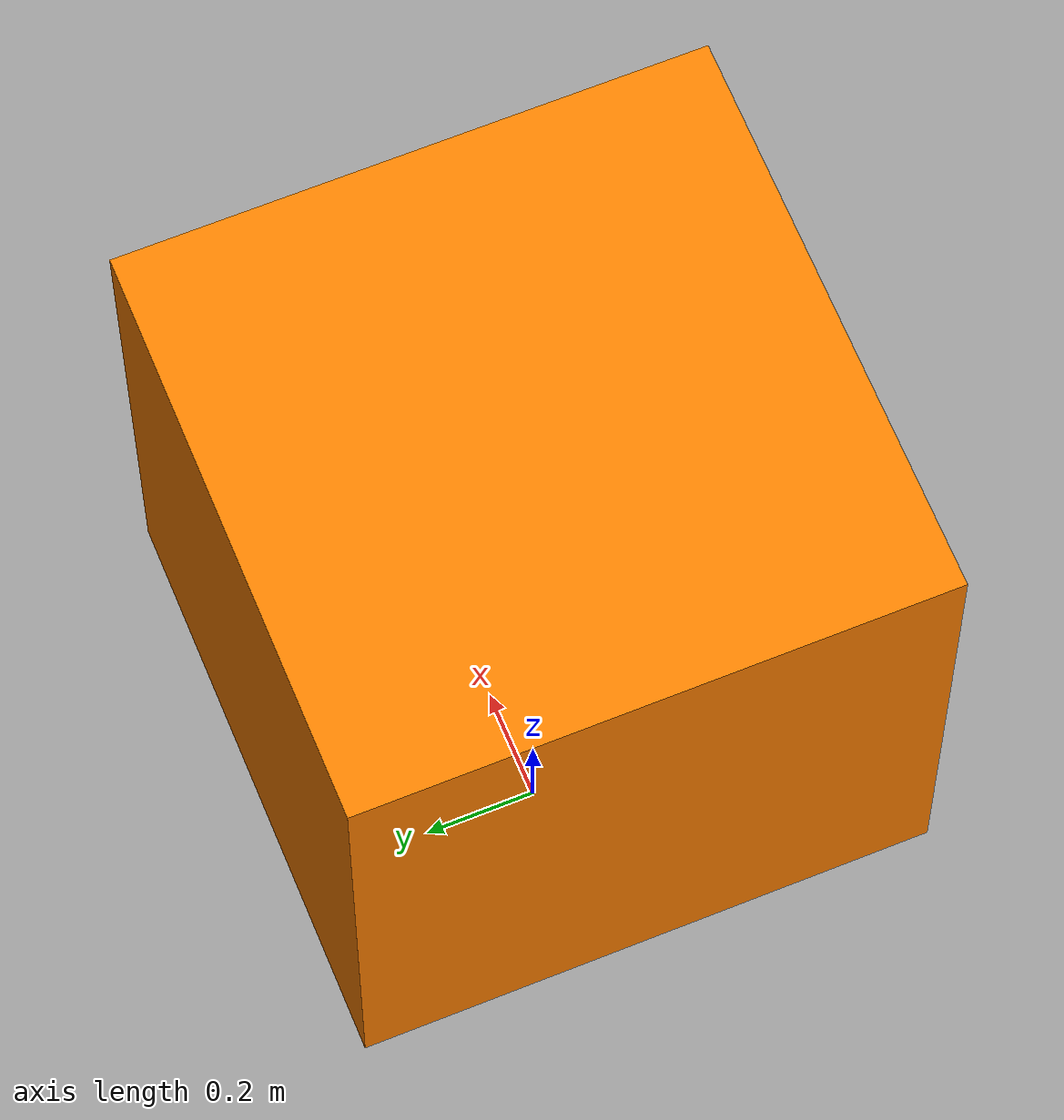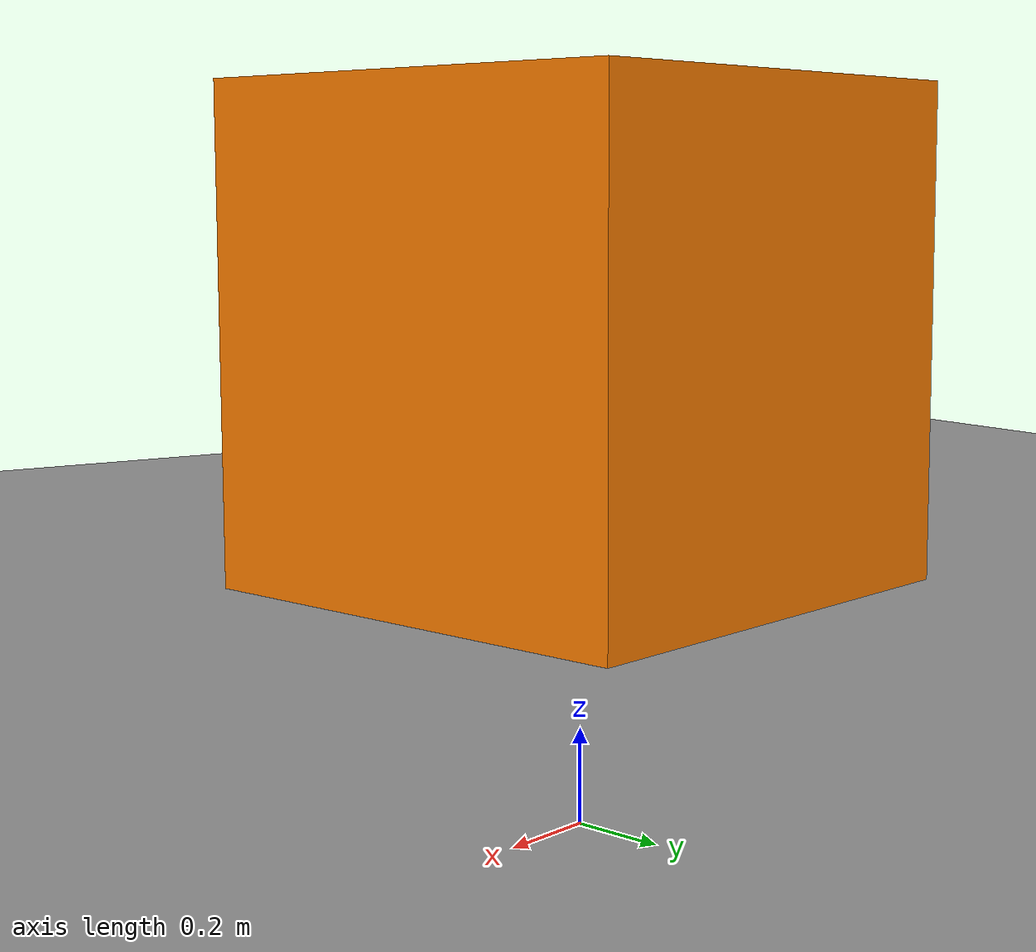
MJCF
<mujoco>
  <option gravity="0 0 -9.81"/>
  <worldbody>
    <!-- Inclined plane (15 degrees) -->
    <body name="inclined_plane" pos="0 0 0" quat="0.1305 0 0 0.9914">
      <geom type="box" size="5 5 0.1" rgba="0.6 0.6 0.6 1" friction="0.5 0.5 0.5"/>
    </body>
    <!-- Block -->
    <body name="block" pos="0 0 1">
      <geom type="box" size="0.5 0.5 0.5" density="1" rgba="1 0.5 0 1"/>
    </body>
    <!-- Ground -->
    <body name="ground" pos="0 0 -5">
      <geom type="plane" size="30 30 0.1" rgba="0.7 0.7 0.7 1" friction="1 1 1"/>
    </body>
  </worldbody>
</mujoco>
